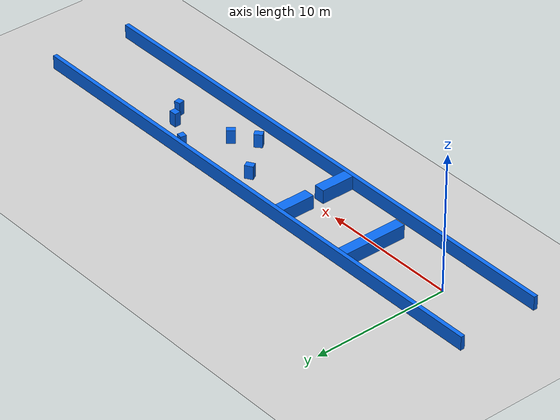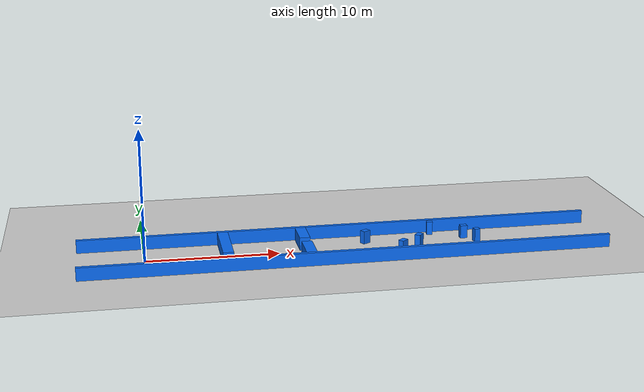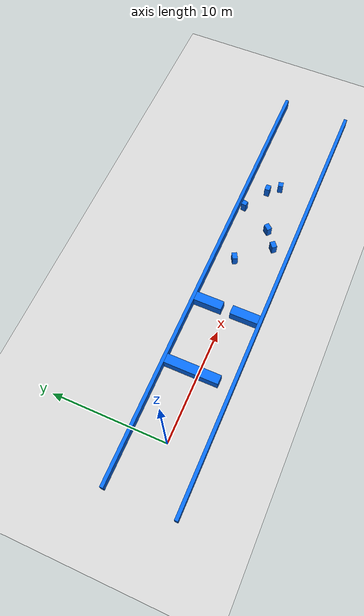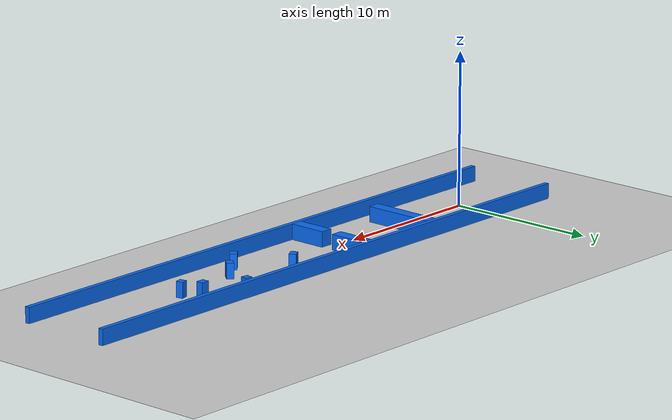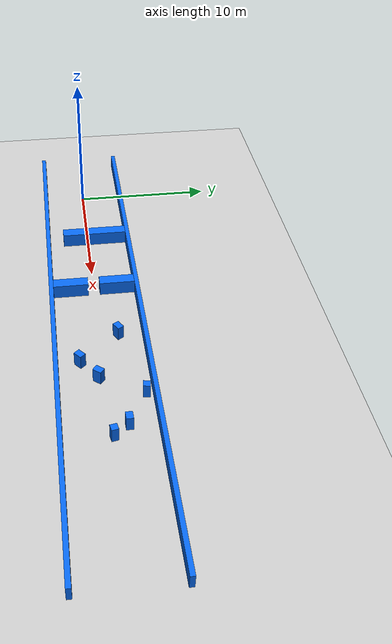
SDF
<sdf version="1.7">
 <world name="corridor_poly_dense">
  <scene><ambient>0.4 0.4 0.4 1</ambient><background>0.9 0.9 0.95 1</background><shadows>1</shadows></scene>
  <light name="sun" type="directional">
   <pose>0 0 10 0 -0 0</pose>
   <diffuse>0.8 0.8 0.8 1</diffuse>
   <specular>0.2 0.2 0.2 1</specular>
   <direction>-0.5 0.2 -1</direction>
   <attenuation><range>10</range></attenuation>
   <spot><inner_angle>0</inner_angle><outer_angle>0</outer_angle><falloff>0</falloff></spot>
  </light>
  <model name="ground">
   <static>1</static>
   <link name="link">
    <collision name="c">
     <geometry><plane><normal>0 0 1</normal><size>300 300</size></plane></geometry>
     <surface><friction><ode><mu>15</mu><mu2>15</mu2></ode></friction></surface>
    </collision>
    <visual name="v">
     <cast_shadows>0</cast_shadows>
     <geometry><plane><normal>0 0 1</normal><size>300 300</size></plane></geometry>
     <material>
      <script><uri>file://media/materials/scripts/gazebo.material</uri><name>Gazebo/Grey</name></script>
     </material>
    </visual>
   </link>
  </model>
  <model name="top_wall">
   <static>1</static>
   <pose>15 3 0.5 0 -0 0</pose>
   <link name="link">
    <collision name="c"><geometry><box><size>39.9651 0.3 1.0</size></box></geometry></collision>
    <visual name="v">
     <geometry><box><size>39.9651 0.3 1.0</size></box></geometry>
     <material><ambient>0.02745 0.41176 0.94118 1</ambient><diffuse>0.02745 0.41176 0.94118 1</diffuse></material>
    </visual>
   </link>
  </model>
  <model name="bottom_wall">
   <static>1</static>
   <pose>15 -3 0.5 0 -0 0</pose>
   <link name="link">
    <collision name="c"><geometry><box><size>39.8395 0.3 1.0</size></box></geometry></collision>
    <visual name="v">
     <geometry><box><size>39.8395 0.3 1.0</size></box></geometry>
     <material><ambient>0.02745 0.41176 0.94118 1</ambient><diffuse>0.02745 0.41176 0.94118 1</diffuse></material>
    </visual>
   </link>
  </model>
  <model name="pillar_c1_top">
   <static>1</static>
   <pose>6 0.5 0.5 0 -0 0</pose>
   <link name="link">
    <collision name="c"><geometry><box><size>0.8 4.7 1.0</size></box></geometry></collision>
    <visual name="v">
     <geometry><box><size>0.8 4.7 1.0</size></box></geometry>
     <material><ambient>0.02745 0.41176 0.94118 1</ambient><diffuse>0.02745 0.41176 0.94118 1</diffuse></material>
    </visual>
   </link>
  </model>
  <model name="pillar_c2_top">
   <static>1</static>
   <pose>12 1.625 0.5 0 -0 0</pose>
   <link name="link">
    <collision name="c"><geometry><box><size>0.8 2.45 1.0</size></box></geometry></collision>
    <visual name="v">
     <geometry><box><size>0.8 2.45 1.0</size></box></geometry>
     <material><ambient>0.02745 0.41176 0.94118 1</ambient><diffuse>0.02745 0.41176 0.94118 1</diffuse></material>
    </visual>
   </link>
  </model>
  <model name="pillar_c2_bottom">
   <static>1</static>
   <pose>12 -1.625 0.5 0 -0 0</pose>
   <link name="link">
    <collision name="c"><geometry><box><size>0.8 2.45 1.0</size></box></geometry></collision>
    <visual name="v">
     <geometry><box><size>0.8 2.45 1.0</size></box></geometry>
     <material><ambient>0.02745 0.41176 0.94118 1</ambient><diffuse>0.02745 0.41176 0.94118 1</diffuse></material>
    </visual>
   </link>
  </model>
  <model name="box_1">
   <static>1</static>
   <pose>20.669 -0.369 0.5 0 -0 0.88</pose>
   <link name="link">
    <collision name="c"><geometry><box><size>0.6 0.45 1</size></box></geometry></collision>
    <visual name="v">
     <geometry><box><size>0.6 0.45 1</size></box></geometry>
     <material><ambient>0.02745 0.41176 0.94118 1</ambient><diffuse>0.02745 0.41176 0.94118 1</diffuse></material>
    </visual>
   </link>
  </model>
  <model name="box_2">
   <static>1</static>
   <pose>19.171 -1.446 0.5 0 -0 0.71</pose>
   <link name="link">
    <collision name="c"><geometry><box><size>0.6 0.45 1</size></box></geometry></collision>
    <visual name="v">
     <geometry><box><size>0.6 0.45 1</size></box></geometry>
     <material><ambient>0.02745 0.41176 0.94118 1</ambient><diffuse>0.02745 0.41176 0.94118 1</diffuse></material>
    </visual>
   </link>
  </model>
  <model name="box_3">
   <static>1</static>
   <pose>25.350 0.141 0.5 0 -0 1.76</pose>
   <link name="link">
    <collision name="c"><geometry><box><size>0.45 0.45 1</size></box></geometry></collision>
    <visual name="v">
     <geometry><box><size>0.45 0.45 1</size></box></geometry>
     <material><ambient>0.02745 0.41176 0.94118 1</ambient><diffuse>0.02745 0.41176 0.94118 1</diffuse></material>
    </visual>
   </link>
  </model>
  <model name="box_4">
   <static>1</static>
   <pose>16.806 1.248 0.5 0 -0 0.54</pose>
   <link name="link">
    <collision name="c"><geometry><box><size>0.6 0.45 1</size></box></geometry></collision>
    <visual name="v">
     <geometry><box><size>0.6 0.45 1</size></box></geometry>
     <material><ambient>0.02745 0.41176 0.94118 1</ambient><diffuse>0.02745 0.41176 0.94118 1</diffuse></material>
    </visual>
   </link>
  </model>
  <model name="box_5">
   <static>1</static>
   <pose>24.573 1.111 0.5 0 -0 1.59</pose>
   <link name="link">
    <collision name="c"><geometry><box><size>0.45 0.55 1</size></box></geometry></collision>
    <visual name="v">
     <geometry><box><size>0.45 0.55 1</size></box></geometry>
     <material><ambient>0.02745 0.41176 0.94118 1</ambient><diffuse>0.02745 0.41176 0.94118 1</diffuse></material>
    </visual>
   </link>
  </model>
  <model name="box_6">
   <static>1</static>
   <pose>22.2 2.450 0.5 0 -0 1.42</pose>
   <link name="link">
    <collision name="c"><geometry><box><size>0.45 0.45 1</size></box></geometry></collision>
    <visual name="v">
     <geometry><box><size>0.45 0.45 1</size></box></geometry>
     <material><ambient>0.02745 0.41176 0.94118 1</ambient><diffuse>0.02745 0.41176 0.94118 1</diffuse></material>
    </visual>
   </link>
  </model>
  <gravity>0 0 -9.8</gravity>
  <magnetic_field>6e-06 2.3e-05 -4.2e-05</magnetic_field>
  <atmosphere type="adiabatic"/>
  <physics type="ode">
   <max_step_size>0.01</max_step_size>
   <real_time_update_rate>100</real_time_update_rate>
  </physics>
  <spherical_coordinates>
   <surface_model>EARTH_WGS84</surface_model>
   <latitude_deg>0</latitude_deg>
   <longitude_deg>0</longitude_deg>
   <elevation>0</elevation>
   <heading_deg>0</heading_deg>
  </spherical_coordinates>
 </world>
</sdf>
